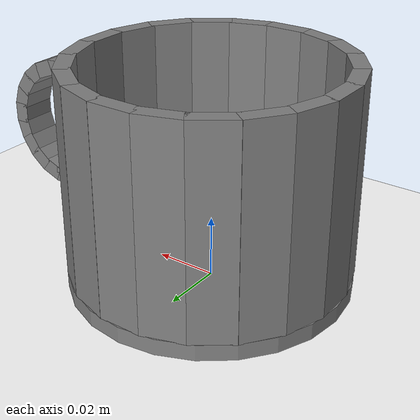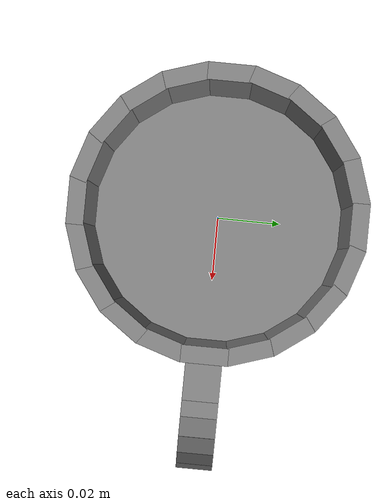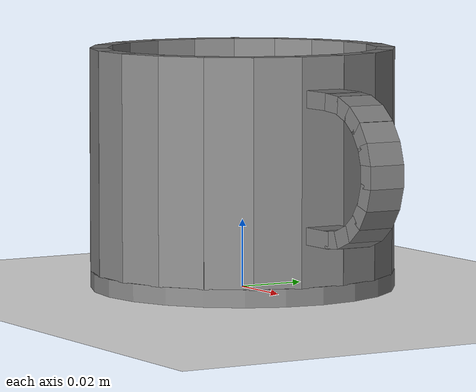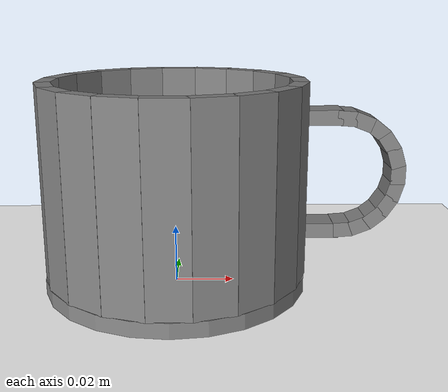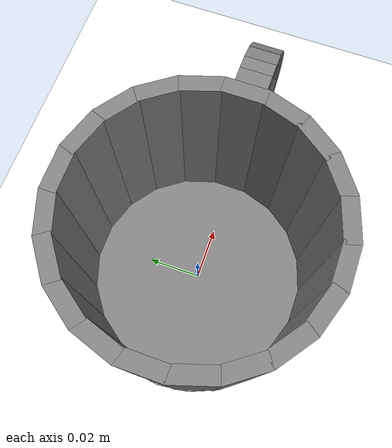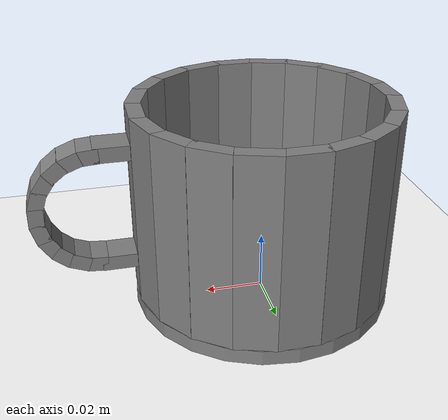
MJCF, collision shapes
<mujoco model="mug">
  <compiler meshdir="F:/--CodeRepo/--CodeRepo/Research/___Mujoco/mujoco/mujoco/icse27/mujoco_rl_fuzz_2.0/.cache/repos/mujoco/model/mug" texturedir="F:/--CodeRepo/--CodeRepo/Research/___Mujoco/mujoco/mujoco/icse27/mujoco_rl_fuzz_2.0/.cache/repos/mujoco/model/mug" assetdir="F:/--CodeRepo/--CodeRepo/Research/___Mujoco/mujoco/mujoco/icse27/mujoco_rl_fuzz_2.0/.cache/repos/mujoco/model/mug"/><visual>
    <headlight ambient="0 0 0" diffuse="0 0 0" specular="1 1 1"/>
    <quality shadowsize="8192"/>
  </visual>

  <asset>
    <texture name="mug" file="mug.png" type="2d"/>
    <material name="mug" texture="mug" specular="1" shininess="1"/>
    <mesh file="mug.obj" scale=".01 .01 .01"/>
    <material name="floor" reflectance=".1"/>
  </asset>

  <default>
    <default class="collision">
      <geom type="box" group="3"/>
      <default class="cup">
        <geom size="0.0026 0.00704 0.033"/>
      </default>
      <default class="handle">
        <geom size="0.0025 0.00328 0.0055"/>
      </default>
    </default>
  </default>

  <worldbody>
    <light pos=".4 -.4 .3" dir="-2 2 -1.5" diffuse=".6 .6 .6"/>
    <light pos="-.2 -.4 .3" dir="1 2 -1.5" diffuse=".6 .6 .6"/>
    <geom type="plane" size="5 5 .01" rgba="1 1 1 1" material="floor"/>
    <body name="mug">
      <freejoint/>
      <geom type="mesh" mesh="mug" material="mug" euler="90 0 0" group="1" contype="0" conaffinity="0"/>
      <geom class="cup" pos="0.0418 0 0.038" euler="0 0 0"/>
      <geom class="cup" pos="0.0398 0.0129 0.038" euler="0 0 18"/>
      <geom class="cup" pos="0.0339 0.0246 0.038" euler="0 0 36"/>
      <geom class="cup" pos="0.0246 0.0339 0.038" euler="0 0 54"/>
      <geom class="cup" pos="0.0129 0.0398 0.038" euler="0 0 72"/>
      <geom class="cup" pos="0 0.0418 0.038" euler="0 0 90"/>
      <geom class="cup" pos="-0.0129 0.0398 0.038" euler="0 0 108"/>
      <geom class="cup" pos="-0.0246 0.0339 0.038" euler="0 0 126"/>
      <geom class="cup" pos="-0.0339 0.0246 0.038" euler="0 0 144"/>
      <geom class="cup" pos="-0.0398 0.0129 0.038" euler="0 0 162"/>
      <geom class="cup" pos="-0.0418 0 0.038" euler="0 0 180"/>
      <geom class="cup" pos="-0.0398 -0.0129 0.038" euler="0 0 198"/>
      <geom class="cup" pos="-0.0339 -0.0246 0.038" euler="0 0 216"/>
      <geom class="cup" pos="-0.0246 -0.0339 0.038" euler="0 0 234"/>
      <geom class="cup" pos="-0.0129 -0.0398 0.038" euler="0 0 252"/>
      <geom class="cup" pos="0 -0.0418 0.038" euler="0 0 270"/>
      <geom class="cup" pos="0.0129 -0.0398 0.038" euler="0 0 288"/>
      <geom class="cup" pos="0.0246 -0.0339 0.038" euler="0 0 306"/>
      <geom class="cup" pos="0.0339 -0.0246 0.038" euler="0 0 324"/>
      <geom class="cup" pos="0.0398 -0.0129 0.038" euler="0 0 342"/>
      <geom class="cup" type="cylinder" size="0.045 0.0026" pos="0 0 0.0026"/>
      <body name="handle" pos="0.056 0 0.0395" euler="90 0 0">
        <geom class="handle" pos="0.0193 0 0" euler="0 0 0"/>
        <geom class="handle" pos="0.0184 0.00568 0" euler="0 0 17.1"/>
        <geom class="handle" pos="0.0159 0.0108 0" euler="0 0 34.3"/>
        <geom class="handle" pos="0.012 0.0151 0" euler="0 0 51.4"/>
        <geom class="handle" pos="0.00703 0.0179 0" euler="0 0 68.6"/>
        <geom class="handle" pos="0.00144 0.0192 0" euler="0 0 85.7"/>
        <geom class="handle" pos="0.00144 -0.0192 0" euler="0 0 274"/>
        <geom class="handle" pos="0.00703 -0.0179 0" euler="0 0 291"/>
        <geom class="handle" pos="0.012 -0.0151 0" euler="0 0 309"/>
        <geom class="handle" pos="0.0159 -0.0108 0" euler="0 0 326"/>
        <geom class="handle" pos="0.0184 -0.00568 0" euler="0 0 343"/>
        <geom class="collision" size="0.007 0.0025 0.0055" pos="-0.007 -0.0195 0"/>
        <geom class="collision" size="0.007 0.0025 0.0055" pos="-0.007 0.0195 0"/>
      </body>
    </body>
  </worldbody>
</mujoco>
